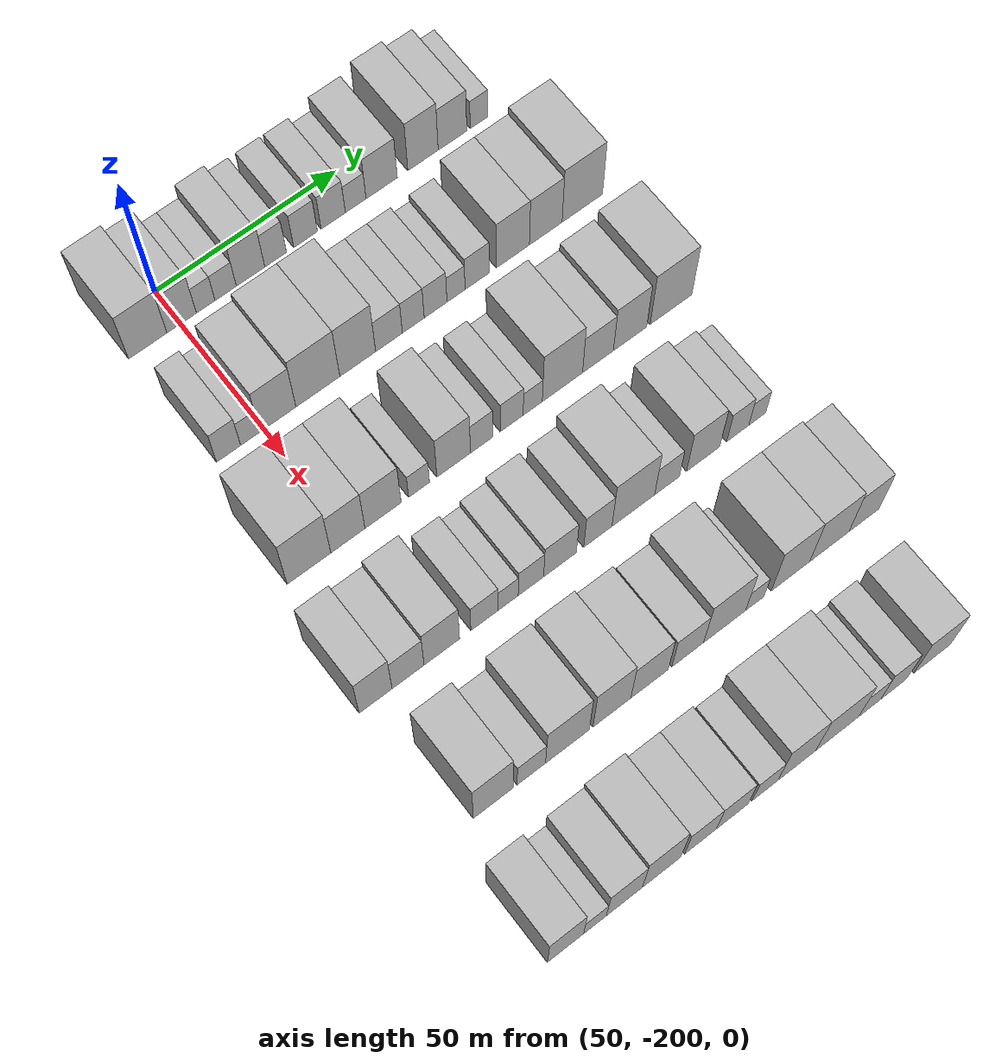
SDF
<sdf version="1.6">
 <world name="default">
  <model name="building_40">
   <static>1</static>
   <pose>50.0000 -208.8138 0 0.000000 0.000000 0.000000</pose>
   <link name="link">
    <pose>0 0 10.50 0 0 0</pose>
    <collision name="collision"><geometry><box><size>20.0000 10.3014 21.0000</size></box></geometry></collision>
    <visual name="visual">
     <cast_shadows>0</cast_shadows>
     <geometry><box><size>20.0000 10.3014 21.0000</size></box></geometry>
     <material>
      <script>
       <uri>model://HANNAS_wall/materials/scripts</uri>
       <uri>model://HANNAS_wall/materials/textures</uri>
       <name>vrc/HANNAS_wall</name>
      </script>
     </material>
    </visual>
   </link>
  </model>
  <model name="building_41">
   <static>1</static>
   <pose>50.0000 -199.6917 0 0.000000 0.000000 0.000000</pose>
   <link name="link">
    <pose>0 0 9.00 0 0 0</pose>
    <collision name="collision"><geometry><box><size>20.0000 7.9428 18.0000</size></box></geometry></collision>
    <visual name="visual">
     <cast_shadows>0</cast_shadows>
     <geometry><box><size>20.0000 7.9428 18.0000</size></box></geometry>
     <material>
      <script>
       <uri>model://HANNAS_wall/materials/scripts</uri>
       <uri>model://HANNAS_wall/materials/textures</uri>
       <name>vrc/HANNAS_wall</name>
      </script>
     </material>
    </visual>
   </link>
  </model>
  <model name="building_42">
   <static>1</static>
   <pose>50.0000 -193.1859 0 0.000000 0.000000 0.000000</pose>
   <link name="link">
    <pose>0 0 6.00 0 0 0</pose>
    <collision name="collision"><geometry><box><size>20.0000 5.0686 12.0000</size></box></geometry></collision>
    <visual name="visual">
     <cast_shadows>0</cast_shadows>
     <geometry><box><size>20.0000 5.0686 12.0000</size></box></geometry>
     <material>
      <script>
       <uri>model://HANNAS_wall/materials/scripts</uri>
       <uri>model://HANNAS_wall/materials/textures</uri>
       <name>vrc/HANNAS_wall</name>
      </script>
     </material>
    </visual>
   </link>
  </model>
  <model name="building_43">
   <static>1</static>
   <pose>50.0000 -187.7437 0 0.000000 0.000000 0.000000</pose>
   <link name="link">
    <pose>0 0 6.00 0 0 0</pose>
    <collision name="collision"><geometry><box><size>20.0000 5.8158 12.0000</size></box></geometry></collision>
    <visual name="visual">
     <cast_shadows>0</cast_shadows>
     <geometry><box><size>20.0000 5.8158 12.0000</size></box></geometry>
     <material>
      <script>
       <uri>model://HANNAS_wall/materials/scripts</uri>
       <uri>model://HANNAS_wall/materials/textures</uri>
       <name>vrc/HANNAS_wall</name>
      </script>
     </material>
    </visual>
   </link>
  </model>
  <model name="building_44">
   <static>1</static>
   <pose>50.0000 -180.9236 0 0.000000 0.000000 0.000000</pose>
   <link name="link">
    <pose>0 0 9.00 0 0 0</pose>
    <collision name="collision"><geometry><box><size>20.0000 7.8245 18.0000</size></box></geometry></collision>
    <visual name="visual">
     <cast_shadows>0</cast_shadows>
     <geometry><box><size>20.0000 7.8245 18.0000</size></box></geometry>
     <material>
      <script>
       <uri>model://HANNAS_wall/materials/scripts</uri>
       <uri>model://HANNAS_wall/materials/textures</uri>
       <name>vrc/HANNAS_wall</name>
      </script>
     </material>
    </visual>
   </link>
  </model>
  <model name="building_45">
   <static>1</static>
   <pose>50.0000 -174.0095 0 0.000000 0.000000 0.000000</pose>
   <link name="link">
    <pose>0 0 7.50 0 0 0</pose>
    <collision name="collision"><geometry><box><size>20.0000 6.0038 15.0000</size></box></geometry></collision>
    <visual name="visual">
     <cast_shadows>0</cast_shadows>
     <geometry><box><size>20.0000 6.0038 15.0000</size></box></geometry>
     <material>
      <script>
       <uri>model://HANNAS_wall/materials/scripts</uri>
       <uri>model://HANNAS_wall/materials/textures</uri>
       <name>vrc/HANNAS_wall</name>
      </script>
     </material>
    </visual>
   </link>
  </model>
  <model name="building_46">
   <static>1</static>
   <pose>50.0000 -165.6978 0 0.000000 0.000000 0.000000</pose>
   <link name="link">
    <pose>0 0 7.50 0 0 0</pose>
    <collision name="collision"><geometry><box><size>20.0000 6.6195 15.0000</size></box></geometry></collision>
    <visual name="visual">
     <cast_shadows>0</cast_shadows>
     <geometry><box><size>20.0000 6.6195 15.0000</size></box></geometry>
     <material>
      <script>
       <uri>model://HANNAS_wall/materials/scripts</uri>
       <uri>model://HANNAS_wall/materials/textures</uri>
       <name>vrc/HANNAS_wall</name>
      </script>
     </material>
    </visual>
   </link>
  </model>
  <model name="building_47">
   <static>1</static>
   <pose>50.0000 -157.9774 0 0.000000 0.000000 0.000000</pose>
   <link name="link">
    <pose>0 0 7.50 0 0 0</pose>
    <collision name="collision"><geometry><box><size>20.0000 6.8214 15.0000</size></box></geometry></collision>
    <visual name="visual">
     <cast_shadows>0</cast_shadows>
     <geometry><box><size>20.0000 6.8214 15.0000</size></box></geometry>
     <material>
      <script>
       <uri>model://HANNAS_wall/materials/scripts</uri>
       <uri>model://HANNAS_wall/materials/textures</uri>
       <name>vrc/HANNAS_wall</name>
      </script>
     </material>
    </visual>
   </link>
  </model>
  <model name="building_48">
   <static>1</static>
   <pose>50.0000 -151.6490 0 0.000000 0.000000 0.000000</pose>
   <link name="link">
    <pose>0 0 6.00 0 0 0</pose>
    <collision name="collision"><geometry><box><size>20.0000 5.8354 12.0000</size></box></geometry></collision>
    <visual name="visual">
     <cast_shadows>0</cast_shadows>
     <geometry><box><size>20.0000 5.8354 12.0000</size></box></geometry>
     <material>
      <script>
       <uri>model://HANNAS_wall/materials/scripts</uri>
       <uri>model://HANNAS_wall/materials/textures</uri>
       <name>vrc/HANNAS_wall</name>
      </script>
     </material>
    </visual>
   </link>
  </model>
  <model name="building_49">
   <static>1</static>
   <pose>50.0000 -144.2989 0 0.000000 0.000000 0.000000</pose>
   <link name="link">
    <pose>0 0 9.00 0 0 0</pose>
    <collision name="collision"><geometry><box><size>20.0000 8.8647 18.0000</size></box></geometry></collision>
    <visual name="visual">
     <cast_shadows>0</cast_shadows>
     <geometry><box><size>20.0000 8.8647 18.0000</size></box></geometry>
     <material>
      <script>
       <uri>model://HANNAS_wall/materials/scripts</uri>
       <uri>model://HANNAS_wall/materials/textures</uri>
       <name>vrc/HANNAS_wall</name>
      </script>
     </material>
    </visual>
   </link>
  </model>
  <model name="building_50">
   <static>1</static>
   <pose>50.0000 -132.5023 0 0.000000 0.000000 0.000000</pose>
   <link name="link">
    <pose>0 0 10.50 0 0 0</pose>
    <collision name="collision"><geometry><box><size>20.0000 8.7286 21.0000</size></box></geometry></collision>
    <visual name="visual">
     <cast_shadows>0</cast_shadows>
     <geometry><box><size>20.0000 8.7286 21.0000</size></box></geometry>
     <material>
      <script>
       <uri>model://HANNAS_wall/materials/scripts</uri>
       <uri>model://HANNAS_wall/materials/textures</uri>
       <name>vrc/HANNAS_wall</name>
      </script>
     </material>
    </visual>
   </link>
  </model>
  <model name="building_51">
   <static>1</static>
   <pose>50.0000 -124.0037 0 0.000000 0.000000 0.000000</pose>
   <link name="link">
    <pose>0 0 9.00 0 0 0</pose>
    <collision name="collision"><geometry><box><size>20.0000 8.2687 18.0000</size></box></geometry></collision>
    <visual name="visual">
     <cast_shadows>0</cast_shadows>
     <geometry><box><size>20.0000 8.2687 18.0000</size></box></geometry>
     <material>
      <script>
       <uri>model://HANNAS_wall/materials/scripts</uri>
       <uri>model://HANNAS_wall/materials/textures</uri>
       <name>vrc/HANNAS_wall</name>
      </script>
     </material>
    </visual>
   </link>
  </model>
  <model name="building_52">
   <static>1</static>
   <pose>50.0000 -116.3145 0 0.000000 0.000000 0.000000</pose>
   <link name="link">
    <pose>0 0 6.00 0 0 0</pose>
    <collision name="collision"><geometry><box><size>20.0000 5.1096 12.0000</size></box></geometry></collision>
    <visual name="visual">
     <cast_shadows>0</cast_shadows>
     <geometry><box><size>20.0000 5.1096 12.0000</size></box></geometry>
     <material>
      <script>
       <uri>model://HANNAS_wall/materials/scripts</uri>
       <uri>model://HANNAS_wall/materials/textures</uri>
       <name>vrc/HANNAS_wall</name>
      </script>
     </material>
    </visual>
   </link>
  </model>
  <model name="building_169">
   <static>1</static>
   <pose>82.0000 -209.3966 0 0.000000 0.000000 0.000000</pose>
   <link name="link">
    <pose>0 0 7.50 0 0 0</pose>
    <collision name="collision"><geometry><box><size>20.0000 6.4064 15.0000</size></box></geometry></collision>
    <visual name="visual">
     <cast_shadows>0</cast_shadows>
     <geometry><box><size>20.0000 6.4064 15.0000</size></box></geometry>
     <material>
      <script>
       <uri>model://HANNAS_wall/materials/scripts</uri>
       <uri>model://HANNAS_wall/materials/textures</uri>
       <name>vrc/HANNAS_wall</name>
      </script>
     </material>
    </visual>
   </link>
  </model>
  <model name="building_170">
   <static>1</static>
   <pose>82.0000 -203.6268 0 0.000000 0.000000 0.000000</pose>
   <link name="link">
    <pose>0 0 6.00 0 0 0</pose>
    <collision name="collision"><geometry><box><size>20.0000 5.1331 12.0000</size></box></geometry></collision>
    <visual name="visual">
     <cast_shadows>0</cast_shadows>
     <geometry><box><size>20.0000 5.1331 12.0000</size></box></geometry>
     <material>
      <script>
       <uri>model://HANNAS_wall/materials/scripts</uri>
       <uri>model://HANNAS_wall/materials/textures</uri>
       <name>vrc/HANNAS_wall</name>
      </script>
     </material>
    </visual>
   </link>
  </model>
  <model name="building_171">
   <static>1</static>
   <pose>82.0000 -196.2169 0 0.000000 0.000000 0.000000</pose>
   <link name="link">
    <pose>0 0 10.50 0 0 0</pose>
    <collision name="collision"><geometry><box><size>20.0000 9.6867 21.0000</size></box></geometry></collision>
    <visual name="visual">
     <cast_shadows>0</cast_shadows>
     <geometry><box><size>20.0000 9.6867 21.0000</size></box></geometry>
     <material>
      <script>
       <uri>model://HANNAS_wall/materials/scripts</uri>
       <uri>model://HANNAS_wall/materials/textures</uri>
       <name>vrc/HANNAS_wall</name>
      </script>
     </material>
    </visual>
   </link>
  </model>
  <model name="building_172">
   <static>1</static>
   <pose>82.0000 -185.4184 0 0.000000 0.000000 0.000000</pose>
   <link name="link">
    <pose>0 0 12.00 0 0 0</pose>
    <collision name="collision"><geometry><box><size>20.0000 11.9102 24.0000</size></box></geometry></collision>
    <visual name="visual">
     <cast_shadows>0</cast_shadows>
     <geometry><box><size>20.0000 11.9102 24.0000</size></box></geometry>
     <material>
      <script>
       <uri>model://HANNAS_wall/materials/scripts</uri>
       <uri>model://HANNAS_wall/materials/textures</uri>
       <name>vrc/HANNAS_wall</name>
      </script>
     </material>
    </visual>
   </link>
  </model>
  <model name="building_173">
   <static>1</static>
   <pose>82.0000 -174.5553 0 0.000000 0.000000 0.000000</pose>
   <link name="link">
    <pose>0 0 12.00 0 0 0</pose>
    <collision name="collision"><geometry><box><size>20.0000 9.8162 24.0000</size></box></geometry></collision>
    <visual name="visual">
     <cast_shadows>0</cast_shadows>
     <geometry><box><size>20.0000 9.8162 24.0000</size></box></geometry>
     <material>
      <script>
       <uri>model://HANNAS_wall/materials/scripts</uri>
       <uri>model://HANNAS_wall/materials/textures</uri>
       <name>vrc/HANNAS_wall</name>
      </script>
     </material>
    </visual>
   </link>
  </model>
  <model name="building_174">
   <static>1</static>
   <pose>82.0000 -165.9482 0 0.000000 0.000000 0.000000</pose>
   <link name="link">
    <pose>0 0 7.50 0 0 0</pose>
    <collision name="collision"><geometry><box><size>20.0000 7.3980 15.0000</size></box></geometry></collision>
    <visual name="visual">
     <cast_shadows>0</cast_shadows>
     <geometry><box><size>20.0000 7.3980 15.0000</size></box></geometry>
     <material>
      <script>
       <uri>model://HANNAS_wall/materials/scripts</uri>
       <uri>model://HANNAS_wall/materials/textures</uri>
       <name>vrc/HANNAS_wall</name>
      </script>
     </material>
    </visual>
   </link>
  </model>
  <model name="building_175">
   <static>1</static>
   <pose>82.0000 -159.2240 0 0.000000 0.000000 0.000000</pose>
   <link name="link">
    <pose>0 0 7.50 0 0 0</pose>
    <collision name="collision"><geometry><box><size>20.0000 6.0505 15.0000</size></box></geometry></collision>
    <visual name="visual">
     <cast_shadows>0</cast_shadows>
     <geometry><box><size>20.0000 6.0505 15.0000</size></box></geometry>
     <material>
      <script>
       <uri>model://HANNAS_wall/materials/scripts</uri>
       <uri>model://HANNAS_wall/materials/textures</uri>
       <name>vrc/HANNAS_wall</name>
      </script>
     </material>
    </visual>
   </link>
  </model>
  <model name="building_176">
   <static>1</static>
   <pose>82.0000 -153.0103 0 0.000000 0.000000 0.000000</pose>
   <link name="link">
    <pose>0 0 7.50 0 0 0</pose>
    <collision name="collision"><geometry><box><size>20.0000 6.3769 15.0000</size></box></geometry></collision>
    <visual name="visual">
     <cast_shadows>0</cast_shadows>
     <geometry><box><size>20.0000 6.3769 15.0000</size></box></geometry>
     <material>
      <script>
       <uri>model://HANNAS_wall/materials/scripts</uri>
       <uri>model://HANNAS_wall/materials/textures</uri>
       <name>vrc/HANNAS_wall</name>
      </script>
     </material>
    </visual>
   </link>
  </model>
  <model name="building_177">
   <static>1</static>
   <pose>82.0000 -147.2824 0 0.000000 0.000000 0.000000</pose>
   <link name="link">
    <pose>0 0 6.00 0 0 0</pose>
    <collision name="collision"><geometry><box><size>20.0000 5.0791 12.0000</size></box></geometry></collision>
    <visual name="visual">
     <cast_shadows>0</cast_shadows>
     <geometry><box><size>20.0000 5.0791 12.0000</size></box></geometry>
     <material>
      <script>
       <uri>model://HANNAS_wall/materials/scripts</uri>
       <uri>model://HANNAS_wall/materials/textures</uri>
       <name>vrc/HANNAS_wall</name>
      </script>
     </material>
    </visual>
   </link>
  </model>
  <model name="building_178">
   <static>1</static>
   <pose>82.0000 -141.3290 0 0.000000 0.000000 0.000000</pose>
   <link name="link">
    <pose>0 0 7.50 0 0 0</pose>
    <collision name="collision"><geometry><box><size>20.0000 6.8276 15.0000</size></box></geometry></collision>
    <visual name="visual">
     <cast_shadows>0</cast_shadows>
     <geometry><box><size>20.0000 6.8276 15.0000</size></box></geometry>
     <material>
      <script>
       <uri>model://HANNAS_wall/materials/scripts</uri>
       <uri>model://HANNAS_wall/materials/textures</uri>
       <name>vrc/HANNAS_wall</name>
      </script>
     </material>
    </visual>
   </link>
  </model>
  <model name="building_179">
   <static>1</static>
   <pose>82.0000 -131.1991 0 0.000000 0.000000 0.000000</pose>
   <link name="link">
    <pose>0 0 10.50 0 0 0</pose>
    <collision name="collision"><geometry><box><size>20.0000 9.4322 21.0000</size></box></geometry></collision>
    <visual name="visual">
     <cast_shadows>0</cast_shadows>
     <geometry><box><size>20.0000 9.4322 21.0000</size></box></geometry>
     <material>
      <script>
       <uri>model://HANNAS_wall/materials/scripts</uri>
       <uri>model://HANNAS_wall/materials/textures</uri>
       <name>vrc/HANNAS_wall</name>
      </script>
     </material>
    </visual>
   </link>
  </model>
  <model name="building_180">
   <static>1</static>
   <pose>82.0000 -121.7818 0 0.000000 0.000000 0.000000</pose>
   <link name="link">
    <pose>0 0 10.50 0 0 0</pose>
    <collision name="collision"><geometry><box><size>20.0000 9.4025 21.0000</size></box></geometry></collision>
    <visual name="visual">
     <cast_shadows>0</cast_shadows>
     <geometry><box><size>20.0000 9.4025 21.0000</size></box></geometry>
     <material>
      <script>
       <uri>model://HANNAS_wall/materials/scripts</uri>
       <uri>model://HANNAS_wall/materials/textures</uri>
       <name>vrc/HANNAS_wall</name>
      </script>
     </material>
    </visual>
   </link>
  </model>
  <model name="building_181">
   <static>1</static>
   <pose>82.0000 -111.2250 0 0.000000 0.000000 0.000000</pose>
   <link name="link">
    <pose>0 0 12.00 0 0 0</pose>
    <collision name="collision"><geometry><box><size>20.0000 11.7112 24.0000</size></box></geometry></collision>
    <visual name="visual">
     <cast_shadows>0</cast_shadows>
     <geometry><box><size>20.0000 11.7112 24.0000</size></box></geometry>
     <material>
      <script>
       <uri>model://HANNAS_wall/materials/scripts</uri>
       <uri>model://HANNAS_wall/materials/textures</uri>
       <name>vrc/HANNAS_wall</name>
      </script>
     </material>
    </visual>
   </link>
  </model>
  <model name="building_297">
   <static>1</static>
   <pose>114.0000 -210.9122 0 0.000000 0.000000 0.000000</pose>
   <link name="link">
    <pose>0 0 12.00 0 0 0</pose>
    <collision name="collision"><geometry><box><size>20.0000 11.4995 24.0000</size></box></geometry></collision>
    <visual name="visual">
     <cast_shadows>0</cast_shadows>
     <geometry><box><size>20.0000 11.4995 24.0000</size></box></geometry>
     <material>
      <script>
       <uri>model://HANNAS_wall/materials/scripts</uri>
       <uri>model://HANNAS_wall/materials/textures</uri>
       <name>vrc/HANNAS_wall</name>
      </script>
     </material>
    </visual>
   </link>
  </model>
  <model name="building_298">
   <static>1</static>
   <pose>114.0000 -200.6374 0 0.000000 0.000000 0.000000</pose>
   <link name="link">
    <pose>0 0 10.50 0 0 0</pose>
    <collision name="collision"><geometry><box><size>20.0000 9.0501 21.0000</size></box></geometry></collision>
    <visual name="visual">
     <cast_shadows>0</cast_shadows>
     <geometry><box><size>20.0000 9.0501 21.0000</size></box></geometry>
     <material>
      <script>
       <uri>model://HANNAS_wall/materials/scripts</uri>
       <uri>model://HANNAS_wall/materials/textures</uri>
       <name>vrc/HANNAS_wall</name>
      </script>
     </material>
    </visual>
   </link>
  </model>
  <model name="building_299">
   <static>1</static>
   <pose>114.0000 -191.2783 0 0.000000 0.000000 0.000000</pose>
   <link name="link">
    <pose>0 0 10.50 0 0 0</pose>
    <collision name="collision"><geometry><box><size>20.0000 9.6682 21.0000</size></box></geometry></collision>
    <visual name="visual">
     <cast_shadows>0</cast_shadows>
     <geometry><box><size>20.0000 9.6682 21.0000</size></box></geometry>
     <material>
      <script>
       <uri>model://HANNAS_wall/materials/scripts</uri>
       <uri>model://HANNAS_wall/materials/textures</uri>
       <name>vrc/HANNAS_wall</name>
      </script>
     </material>
    </visual>
   </link>
  </model>
  <model name="building_300">
   <static>1</static>
   <pose>114.0000 -181.6312 0 0.000000 0.000000 0.000000</pose>
   <link name="link">
    <pose>0 0 6.00 0 0 0</pose>
    <collision name="collision"><geometry><box><size>20.0000 5.6261 12.0000</size></box></geometry></collision>
    <visual name="visual">
     <cast_shadows>0</cast_shadows>
     <geometry><box><size>20.0000 5.6261 12.0000</size></box></geometry>
     <material>
      <script>
       <uri>model://HANNAS_wall/materials/scripts</uri>
       <uri>model://HANNAS_wall/materials/textures</uri>
       <name>vrc/HANNAS_wall</name>
      </script>
     </material>
    </visual>
   </link>
  </model>
  <model name="building_301">
   <static>1</static>
   <pose>114.0000 -172.2374 0 0.000000 0.000000 0.000000</pose>
   <link name="link">
    <pose>0 0 10.50 0 0 0</pose>
    <collision name="collision"><geometry><box><size>20.0000 9.1615 21.0000</size></box></geometry></collision>
    <visual name="visual">
     <cast_shadows>0</cast_shadows>
     <geometry><box><size>20.0000 9.1615 21.0000</size></box></geometry>
     <material>
      <script>
       <uri>model://HANNAS_wall/materials/scripts</uri>
       <uri>model://HANNAS_wall/materials/textures</uri>
       <name>vrc/HANNAS_wall</name>
      </script>
     </material>
    </visual>
   </link>
  </model>
  <model name="building_302">
   <static>1</static>
   <pose>114.0000 -164.5729 0 0.000000 0.000000 0.000000</pose>
   <link name="link">
    <pose>0 0 7.50 0 0 0</pose>
    <collision name="collision"><geometry><box><size>20.0000 6.1673 15.0000</size></box></geometry></collision>
    <visual name="visual">
     <cast_shadows>0</cast_shadows>
     <geometry><box><size>20.0000 6.1673 15.0000</size></box></geometry>
     <material>
      <script>
       <uri>model://HANNAS_wall/materials/scripts</uri>
       <uri>model://HANNAS_wall/materials/textures</uri>
       <name>vrc/HANNAS_wall</name>
      </script>
     </material>
    </visual>
   </link>
  </model>
  <model name="building_303">
   <static>1</static>
   <pose>114.0000 -156.3201 0 0.000000 0.000000 0.000000</pose>
   <link name="link">
    <pose>0 0 7.50 0 0 0</pose>
    <collision name="collision"><geometry><box><size>20.0000 6.3383 15.0000</size></box></geometry></collision>
    <visual name="visual">
     <cast_shadows>0</cast_shadows>
     <geometry><box><size>20.0000 6.3383 15.0000</size></box></geometry>
     <material>
      <script>
       <uri>model://HANNAS_wall/materials/scripts</uri>
       <uri>model://HANNAS_wall/materials/textures</uri>
       <name>vrc/HANNAS_wall</name>
      </script>
     </material>
    </visual>
   </link>
  </model>
  <model name="building_304">
   <static>1</static>
   <pose>114.0000 -150.4932 0 0.000000 0.000000 0.000000</pose>
   <link name="link">
    <pose>0 0 6.00 0 0 0</pose>
    <collision name="collision"><geometry><box><size>20.0000 5.3154 12.0000</size></box></geometry></collision>
    <visual name="visual">
     <cast_shadows>0</cast_shadows>
     <geometry><box><size>20.0000 5.3154 12.0000</size></box></geometry>
     <material>
      <script>
       <uri>model://HANNAS_wall/materials/scripts</uri>
       <uri>model://HANNAS_wall/materials/textures</uri>
       <name>vrc/HANNAS_wall</name>
      </script>
     </material>
    </visual>
   </link>
  </model>
  <model name="building_305">
   <static>1</static>
   <pose>114.0000 -142.1930 0 0.000000 0.000000 0.000000</pose>
   <link name="link">
    <pose>0 0 12.00 0 0 0</pose>
    <collision name="collision"><geometry><box><size>20.0000 11.2850 24.0000</size></box></geometry></collision>
    <visual name="visual">
     <cast_shadows>0</cast_shadows>
     <geometry><box><size>20.0000 11.2850 24.0000</size></box></geometry>
     <material>
      <script>
       <uri>model://HANNAS_wall/materials/scripts</uri>
       <uri>model://HANNAS_wall/materials/textures</uri>
       <name>vrc/HANNAS_wall</name>
      </script>
     </material>
    </visual>
   </link>
  </model>
  <model name="building_306">
   <static>1</static>
   <pose>114.0000 -132.1898 0 0.000000 0.000000 0.000000</pose>
   <link name="link">
    <pose>0 0 9.00 0 0 0</pose>
    <collision name="collision"><geometry><box><size>20.0000 8.7216 18.0000</size></box></geometry></collision>
    <visual name="visual">
     <cast_shadows>0</cast_shadows>
     <geometry><box><size>20.0000 8.7216 18.0000</size></box></geometry>
     <material>
      <script>
       <uri>model://HANNAS_wall/materials/scripts</uri>
       <uri>model://HANNAS_wall/materials/textures</uri>
       <name>vrc/HANNAS_wall</name>
      </script>
     </material>
    </visual>
   </link>
  </model>
  <model name="building_307">
   <static>1</static>
   <pose>114.0000 -123.0762 0 0.000000 0.000000 0.000000</pose>
   <link name="link">
    <pose>0 0 10.50 0 0 0</pose>
    <collision name="collision"><geometry><box><size>20.0000 9.5055 21.0000</size></box></geometry></collision>
    <visual name="visual">
     <cast_shadows>0</cast_shadows>
     <geometry><box><size>20.0000 9.5055 21.0000</size></box></geometry>
     <material>
      <script>
       <uri>model://HANNAS_wall/materials/scripts</uri>
       <uri>model://HANNAS_wall/materials/textures</uri>
       <name>vrc/HANNAS_wall</name>
      </script>
     </material>
    </visual>
   </link>
  </model>
  <model name="building_308">
   <static>1</static>
   <pose>114.0000 -111.3295 0 0.000000 0.000000 0.000000</pose>
   <link name="link">
    <pose>0 0 12.00 0 0 0</pose>
    <collision name="collision"><geometry><box><size>20.0000 11.9880 24.0000</size></box></geometry></collision>
    <visual name="visual">
     <cast_shadows>0</cast_shadows>
     <geometry><box><size>20.0000 11.9880 24.0000</size></box></geometry>
     <material>
      <script>
       <uri>model://HANNAS_wall/materials/scripts</uri>
       <uri>model://HANNAS_wall/materials/textures</uri>
       <name>vrc/HANNAS_wall</name>
      </script>
     </material>
    </visual>
   </link>
  </model>
  <model name="building_417">
   <static>1</static>
   <pose>146.0000 -216.9086 0 0.000000 0.000000 0.000000</pose>
   <link name="link">
    <pose>0 0 10.50 0 0 0</pose>
    <collision name="collision"><geometry><box><size>20.0000 8.5327 21.0000</size></box></geometry></collision>
    <visual name="visual">
     <cast_shadows>0</cast_shadows>
     <geometry><box><size>20.0000 8.5327 21.0000</size></box></geometry>
     <material>
      <script>
       <uri>model://HANNAS_wall/materials/scripts</uri>
       <uri>model://HANNAS_wall/materials/textures</uri>
       <name>vrc/HANNAS_wall</name>
      </script>
     </material>
    </visual>
   </link>
  </model>
  <model name="building_418">
   <static>1</static>
   <pose>146.0000 -208.4651 0 0.000000 0.000000 0.000000</pose>
   <link name="link">
    <pose>0 0 9.00 0 0 0</pose>
    <collision name="collision"><geometry><box><size>20.0000 8.3543 18.0000</size></box></geometry></collision>
    <visual name="visual">
     <cast_shadows>0</cast_shadows>
     <geometry><box><size>20.0000 8.3543 18.0000</size></box></geometry>
     <material>
      <script>
       <uri>model://HANNAS_wall/materials/scripts</uri>
       <uri>model://HANNAS_wall/materials/textures</uri>
       <name>vrc/HANNAS_wall</name>
      </script>
     </material>
    </visual>
   </link>
  </model>
  <model name="building_419">
   <static>1</static>
   <pose>146.0000 -199.6289 0 0.000000 0.000000 0.000000</pose>
   <link name="link">
    <pose>0 0 10.50 0 0 0</pose>
    <collision name="collision"><geometry><box><size>20.0000 9.3181 21.0000</size></box></geometry></collision>
    <visual name="visual">
     <cast_shadows>0</cast_shadows>
     <geometry><box><size>20.0000 9.3181 21.0000</size></box></geometry>
     <material>
      <script>
       <uri>model://HANNAS_wall/materials/scripts</uri>
       <uri>model://HANNAS_wall/materials/textures</uri>
       <name>vrc/HANNAS_wall</name>
      </script>
     </material>
    </visual>
   </link>
  </model>
  <model name="building_420">
   <static>1</static>
   <pose>146.0000 -188.3543 0 0.000000 0.000000 0.000000</pose>
   <link name="link">
    <pose>0 0 7.50 0 0 0</pose>
    <collision name="collision"><geometry><box><size>20.0000 7.2312 15.0000</size></box></geometry></collision>
    <visual name="visual">
     <cast_shadows>0</cast_shadows>
     <geometry><box><size>20.0000 7.2312 15.0000</size></box></geometry>
     <material>
      <script>
       <uri>model://HANNAS_wall/materials/scripts</uri>
       <uri>model://HANNAS_wall/materials/textures</uri>
       <name>vrc/HANNAS_wall</name>
      </script>
     </material>
    </visual>
   </link>
  </model>
  <model name="building_421">
   <static>1</static>
   <pose>146.0000 -182.0486 0 0.000000 0.000000 0.000000</pose>
   <link name="link">
    <pose>0 0 6.00 0 0 0</pose>
    <collision name="collision"><geometry><box><size>20.0000 5.3800 12.0000</size></box></geometry></collision>
    <visual name="visual">
     <cast_shadows>0</cast_shadows>
     <geometry><box><size>20.0000 5.3800 12.0000</size></box></geometry>
     <material>
      <script>
       <uri>model://HANNAS_wall/materials/scripts</uri>
       <uri>model://HANNAS_wall/materials/textures</uri>
       <name>vrc/HANNAS_wall</name>
      </script>
     </material>
    </visual>
   </link>
  </model>
  <model name="building_422">
   <static>1</static>
   <pose>146.0000 -175.9361 0 0.000000 0.000000 0.000000</pose>
   <link name="link">
    <pose>0 0 7.50 0 0 0</pose>
    <collision name="collision"><geometry><box><size>20.0000 6.8451 15.0000</size></box></geometry></collision>
    <visual name="visual">
     <cast_shadows>0</cast_shadows>
     <geometry><box><size>20.0000 6.8451 15.0000</size></box></geometry>
     <material>
      <script>
       <uri>model://HANNAS_wall/materials/scripts</uri>
       <uri>model://HANNAS_wall/materials/textures</uri>
       <name>vrc/HANNAS_wall</name>
      </script>
     </material>
    </visual>
   </link>
  </model>
  <model name="building_423">
   <static>1</static>
   <pose>146.0000 -168.0708 0 0.000000 0.000000 0.000000</pose>
   <link name="link">
    <pose>0 0 9.00 0 0 0</pose>
    <collision name="collision"><geometry><box><size>20.0000 8.8856 18.0000</size></box></geometry></collision>
    <visual name="visual">
     <cast_shadows>0</cast_shadows>
     <geometry><box><size>20.0000 8.8856 18.0000</size></box></geometry>
     <material>
      <script>
       <uri>model://HANNAS_wall/materials/scripts</uri>
       <uri>model://HANNAS_wall/materials/textures</uri>
       <name>vrc/HANNAS_wall</name>
      </script>
     </material>
    </visual>
   </link>
  </model>
  <model name="building_424">
   <static>1</static>
   <pose>146.0000 -157.7720 0 0.000000 0.000000 0.000000</pose>
   <link name="link">
    <pose>0 0 9.00 0 0 0</pose>
    <collision name="collision"><geometry><box><size>20.0000 7.7119 18.0000</size></box></geometry></collision>
    <visual name="visual">
     <cast_shadows>0</cast_shadows>
     <geometry><box><size>20.0000 7.7119 18.0000</size></box></geometry>
     <material>
      <script>
       <uri>model://HANNAS_wall/materials/scripts</uri>
       <uri>model://HANNAS_wall/materials/textures</uri>
       <name>vrc/HANNAS_wall</name>
      </script>
     </material>
    </visual>
   </link>
  </model>
  <model name="building_425">
   <static>1</static>
   <pose>146.0000 -148.0028 0 0.000000 0.000000 0.000000</pose>
   <link name="link">
    <pose>0 0 12.00 0 0 0</pose>
    <collision name="collision"><geometry><box><size>20.0000 11.8264 24.0000</size></box></geometry></collision>
    <visual name="visual">
     <cast_shadows>0</cast_shadows>
     <geometry><box><size>20.0000 11.8264 24.0000</size></box></geometry>
     <material>
      <script>
       <uri>model://HANNAS_wall/materials/scripts</uri>
       <uri>model://HANNAS_wall/materials/textures</uri>
       <name>vrc/HANNAS_wall</name>
      </script>
     </material>
    </visual>
   </link>
  </model>
  <model name="building_426">
   <static>1</static>
   <pose>146.0000 -138.6194 0 0.000000 0.000000 0.000000</pose>
   <link name="link">
    <pose>0 0 7.50 0 0 0</pose>
    <collision name="collision"><geometry><box><size>20.0000 6.9405 15.0000</size></box></geometry></collision>
    <visual name="visual">
     <cast_shadows>0</cast_shadows>
     <geometry><box><size>20.0000 6.9405 15.0000</size></box></geometry>
     <material>
      <script>
       <uri>model://HANNAS_wall/materials/scripts</uri>
       <uri>model://HANNAS_wall/materials/textures</uri>
       <name>vrc/HANNAS_wall</name>
      </script>
     </material>
    </visual>
   </link>
  </model>
  <model name="building_427">
   <static>1</static>
   <pose>146.0000 -128.4983 0 0.000000 0.000000 0.000000</pose>
   <link name="link">
    <pose>0 0 10.50 0 0 0</pose>
    <collision name="collision"><geometry><box><size>20.0000 9.3016 21.0000</size></box></geometry></collision>
    <visual name="visual">
     <cast_shadows>0</cast_shadows>
     <geometry><box><size>20.0000 9.3016 21.0000</size></box></geometry>
     <material>
      <script>
       <uri>model://HANNAS_wall/materials/scripts</uri>
       <uri>model://HANNAS_wall/materials/textures</uri>
       <name>vrc/HANNAS_wall</name>
      </script>
     </material>
    </visual>
   </link>
  </model>
  <model name="building_428">
   <static>1</static>
   <pose>146.0000 -118.6992 0 0.000000 0.000000 0.000000</pose>
   <link name="link">
    <pose>0 0 7.50 0 0 0</pose>
    <collision name="collision"><geometry><box><size>20.0000 6.2966 15.0000</size></box></geometry></collision>
    <visual name="visual">
     <cast_shadows>0</cast_shadows>
     <geometry><box><size>20.0000 6.2966 15.0000</size></box></geometry>
     <material>
      <script>
       <uri>model://HANNAS_wall/materials/scripts</uri>
       <uri>model://HANNAS_wall/materials/textures</uri>
       <name>vrc/HANNAS_wall</name>
      </script>
     </material>
    </visual>
   </link>
  </model>
  <model name="building_429">
   <static>1</static>
   <pose>146.0000 -113.1475 0 0.000000 0.000000 0.000000</pose>
   <link name="link">
    <pose>0 0 6.00 0 0 0</pose>
    <collision name="collision"><geometry><box><size>20.0000 4.8068 12.0000</size></box></geometry></collision>
    <visual name="visual">
     <cast_shadows>0</cast_shadows>
     <geometry><box><size>20.0000 4.8068 12.0000</size></box></geometry>
     <material>
      <script>
       <uri>model://HANNAS_wall/materials/scripts</uri>
       <uri>model://HANNAS_wall/materials/textures</uri>
       <name>vrc/HANNAS_wall</name>
      </script>
     </material>
    </visual>
   </link>
  </model>
  <model name="building_532">
   <static>1</static>
   <pose>178.0000 -210.6344 0 0.000000 0.000000 0.000000</pose>
   <link name="link">
    <pose>0 0 12.00 0 0 0</pose>
    <collision name="collision"><geometry><box><size>20.0000 10.3002 24.0000</size></box></geometry></collision>
    <visual name="visual">
     <cast_shadows>0</cast_shadows>
     <geometry><box><size>20.0000 10.3002 24.0000</size></box></geometry>
     <material>
      <script>
       <uri>model://HANNAS_wall/materials/scripts</uri>
       <uri>model://HANNAS_wall/materials/textures</uri>
       <name>vrc/HANNAS_wall</name>
      </script>
     </material>
    </visual>
   </link>
  </model>
  <model name="building_533">
   <static>1</static>
   <pose>178.0000 -200.7801 0 0.000000 0.000000 0.000000</pose>
   <link name="link">
    <pose>0 0 7.50 0 0 0</pose>
    <collision name="collision"><geometry><box><size>20.0000 7.4085 15.0000</size></box></geometry></collision>
    <visual name="visual">
     <cast_shadows>0</cast_shadows>
     <geometry><box><size>20.0000 7.4085 15.0000</size></box></geometry>
     <material>
      <script>
       <uri>model://HANNAS_wall/materials/scripts</uri>
       <uri>model://HANNAS_wall/materials/textures</uri>
       <name>vrc/HANNAS_wall</name>
      </script>
     </material>
    </visual>
   </link>
  </model>
  <model name="building_534">
   <static>1</static>
   <pose>178.0000 -191.3310 0 0.000000 0.000000 0.000000</pose>
   <link name="link">
    <pose>0 0 12.00 0 0 0</pose>
    <collision name="collision"><geometry><box><size>20.0000 11.4896 24.0000</size></box></geometry></collision>
    <visual name="visual">
     <cast_shadows>0</cast_shadows>
     <geometry><box><size>20.0000 11.4896 24.0000</size></box></geometry>
     <material>
      <script>
       <uri>model://HANNAS_wall/materials/scripts</uri>
       <uri>model://HANNAS_wall/materials/textures</uri>
       <name>vrc/HANNAS_wall</name>
      </script>
     </material>
    </visual>
   </link>
  </model>
  <model name="building_535">
   <static>1</static>
   <pose>178.0000 -179.5438 0 0.000000 0.000000 0.000000</pose>
   <link name="link">
    <pose>0 0 12.00 0 0 0</pose>
    <collision name="collision"><geometry><box><size>20.0000 10.0848 24.0000</size></box></geometry></collision>
    <visual name="visual">
     <cast_shadows>0</cast_shadows>
     <geometry><box><size>20.0000 10.0848 24.0000</size></box></geometry>
     <material>
      <script>
       <uri>model://HANNAS_wall/materials/scripts</uri>
       <uri>model://HANNAS_wall/materials/textures</uri>
       <name>vrc/HANNAS_wall</name>
      </script>
     </material>
    </visual>
   </link>
  </model>
  <model name="building_536">
   <static>1</static>
   <pose>178.0000 -169.4841 0 0.000000 0.000000 0.000000</pose>
   <link name="link">
    <pose>0 0 10.50 0 0 0</pose>
    <collision name="collision"><geometry><box><size>20.0000 10.0345 21.0000</size></box></geometry></collision>
    <visual name="visual">
     <cast_shadows>0</cast_shadows>
     <geometry><box><size>20.0000 10.0345 21.0000</size></box></geometry>
     <material>
      <script>
       <uri>model://HANNAS_wall/materials/scripts</uri>
       <uri>model://HANNAS_wall/materials/textures</uri>
       <name>vrc/HANNAS_wall</name>
      </script>
     </material>
    </visual>
   </link>
  </model>
  <model name="building_537">
   <static>1</static>
   <pose>178.0000 -159.1468 0 0.000000 0.000000 0.000000</pose>
   <link name="link">
    <pose>0 0 9.00 0 0 0</pose>
    <collision name="collision"><geometry><box><size>20.0000 8.6402 18.0000</size></box></geometry></collision>
    <visual name="visual">
     <cast_shadows>0</cast_shadows>
     <geometry><box><size>20.0000 8.6402 18.0000</size></box></geometry>
     <material>
      <script>
       <uri>model://HANNAS_wall/materials/scripts</uri>
       <uri>model://HANNAS_wall/materials/textures</uri>
       <name>vrc/HANNAS_wall</name>
      </script>
     </material>
    </visual>
   </link>
  </model>
  <model name="building_538">
   <static>1</static>
   <pose>178.0000 -149.0733 0 0.000000 0.000000 0.000000</pose>
   <link name="link">
    <pose>0 0 12.00 0 0 0</pose>
    <collision name="collision"><geometry><box><size>20.0000 11.5068 24.0000</size></box></geometry></collision>
    <visual name="visual">
     <cast_shadows>0</cast_shadows>
     <geometry><box><size>20.0000 11.5068 24.0000</size></box></geometry>
     <material>
      <script>
       <uri>model://HANNAS_wall/materials/scripts</uri>
       <uri>model://HANNAS_wall/materials/textures</uri>
       <name>vrc/HANNAS_wall</name>
      </script>
     </material>
    </visual>
   </link>
  </model>
  <model name="building_539">
   <static>1</static>
   <pose>178.0000 -140.7698 0 0.000000 0.000000 0.000000</pose>
   <link name="link">
    <pose>0 0 6.00 0 0 0</pose>
    <collision name="collision"><geometry><box><size>20.0000 5.1001 12.0000</size></box></geometry></collision>
    <visual name="visual">
     <cast_shadows>0</cast_shadows>
     <geometry><box><size>20.0000 5.1001 12.0000</size></box></geometry>
     <material>
      <script>
       <uri>model://HANNAS_wall/materials/scripts</uri>
       <uri>model://HANNAS_wall/materials/textures</uri>
       <name>vrc/HANNAS_wall</name>
      </script>
     </material>
    </visual>
   </link>
  </model>
  <model name="building_540">
   <static>1</static>
   <pose>178.0000 -130.8442 0 0.000000 0.000000 0.000000</pose>
   <link name="link">
    <pose>0 0 12.00 0 0 0</pose>
    <collision name="collision"><geometry><box><size>20.0000 10.7513 24.0000</size></box></geometry></collision>
    <visual name="visual">
     <cast_shadows>0</cast_shadows>
     <geometry><box><size>20.0000 10.7513 24.0000</size></box></geometry>
     <material>
      <script>
       <uri>model://HANNAS_wall/materials/scripts</uri>
       <uri>model://HANNAS_wall/materials/textures</uri>
       <name>vrc/HANNAS_wall</name>
      </script>
     </material>
    </visual>
   </link>
  </model>
  <model name="building_541">
   <static>1</static>
   <pose>178.0000 -119.9368 0 0.000000 0.000000 0.000000</pose>
   <link name="link">
    <pose>0 0 12.00 0 0 0</pose>
    <collision name="collision"><geometry><box><size>20.0000 11.0636 24.0000</size></box></geometry></collision>
    <visual name="visual">
     <cast_shadows>0</cast_shadows>
     <geometry><box><size>20.0000 11.0636 24.0000</size></box></geometry>
     <material>
      <script>
       <uri>model://HANNAS_wall/materials/scripts</uri>
       <uri>model://HANNAS_wall/materials/textures</uri>
       <name>vrc/HANNAS_wall</name>
      </script>
     </material>
    </visual>
   </link>
  </model>
  <model name="building_542">
   <static>1</static>
   <pose>178.0000 -110.0904 0 0.000000 0.000000 0.000000</pose>
   <link name="link">
    <pose>0 0 10.50 0 0 0</pose>
    <collision name="collision"><geometry><box><size>20.0000 8.6291 21.0000</size></box></geometry></collision>
    <visual name="visual">
     <cast_shadows>0</cast_shadows>
     <geometry><box><size>20.0000 8.6291 21.0000</size></box></geometry>
     <material>
      <script>
       <uri>model://HANNAS_wall/materials/scripts</uri>
       <uri>model://HANNAS_wall/materials/textures</uri>
       <name>vrc/HANNAS_wall</name>
      </script>
     </material>
    </visual>
   </link>
  </model>
  <model name="building_660">
   <static>1</static>
   <pose>210.0000 -217.0556 0 0.000000 0.000000 0.000000</pose>
   <link name="link">
    <pose>0 0 10.50 0 0 0</pose>
    <collision name="collision"><geometry><box><size>20.0000 9.2028 21.0000</size></box></geometry></collision>
    <visual name="visual">
     <cast_shadows>0</cast_shadows>
     <geometry><box><size>20.0000 9.2028 21.0000</size></box></geometry>
     <material>
      <script>
       <uri>model://HANNAS_wall/materials/scripts</uri>
       <uri>model://HANNAS_wall/materials/textures</uri>
       <name>vrc/HANNAS_wall</name>
      </script>
     </material>
    </visual>
   </link>
  </model>
  <model name="building_661">
   <static>1</static>
   <pose>210.0000 -209.5477 0 0.000000 0.000000 0.000000</pose>
   <link name="link">
    <pose>0 0 6.00 0 0 0</pose>
    <collision name="collision"><geometry><box><size>20.0000 5.8129 12.0000</size></box></geometry></collision>
    <visual name="visual">
     <cast_shadows>0</cast_shadows>
     <geometry><box><size>20.0000 5.8129 12.0000</size></box></geometry>
     <material>
      <script>
       <uri>model://HANNAS_wall/materials/scripts</uri>
       <uri>model://HANNAS_wall/materials/textures</uri>
       <name>vrc/HANNAS_wall</name>
      </script>
     </material>
    </visual>
   </link>
  </model>
  <model name="building_662">
   <static>1</static>
   <pose>210.0000 -202.0047 0 0.000000 0.000000 0.000000</pose>
   <link name="link">
    <pose>0 0 10.50 0 0 0</pose>
    <collision name="collision"><geometry><box><size>20.0000 9.2732 21.0000</size></box></geometry></collision>
    <visual name="visual">
     <cast_shadows>0</cast_shadows>
     <geometry><box><size>20.0000 9.2732 21.0000</size></box></geometry>
     <material>
      <script>
       <uri>model://HANNAS_wall/materials/scripts</uri>
       <uri>model://HANNAS_wall/materials/textures</uri>
       <name>vrc/HANNAS_wall</name>
      </script>
     </material>
    </visual>
   </link>
  </model>
  <model name="building_663">
   <static>1</static>
   <pose>210.0000 -192.3294 0 0.000000 0.000000 0.000000</pose>
   <link name="link">
    <pose>0 0 12.00 0 0 0</pose>
    <collision name="collision"><geometry><box><size>20.0000 10.0774 24.0000</size></box></geometry></collision>
    <visual name="visual">
     <cast_shadows>0</cast_shadows>
     <geometry><box><size>20.0000 10.0774 24.0000</size></box></geometry>
     <material>
      <script>
       <uri>model://HANNAS_wall/materials/scripts</uri>
       <uri>model://HANNAS_wall/materials/textures</uri>
       <name>vrc/HANNAS_wall</name>
      </script>
     </material>
    </visual>
   </link>
  </model>
  <model name="building_664">
   <static>1</static>
   <pose>210.0000 -182.0985 0 0.000000 0.000000 0.000000</pose>
   <link name="link">
    <pose>0 0 9.00 0 0 0</pose>
    <collision name="collision"><geometry><box><size>20.0000 8.3844 18.0000</size></box></geometry></collision>
    <visual name="visual">
     <cast_shadows>0</cast_shadows>
     <geometry><box><size>20.0000 8.3844 18.0000</size></box></geometry>
     <material>
      <script>
       <uri>model://HANNAS_wall/materials/scripts</uri>
       <uri>model://HANNAS_wall/materials/textures</uri>
       <name>vrc/HANNAS_wall</name>
      </script>
     </material>
    </visual>
   </link>
  </model>
  <model name="building_665">
   <static>1</static>
   <pose>210.0000 -173.6885 0 0.000000 0.000000 0.000000</pose>
   <link name="link">
    <pose>0 0 9.00 0 0 0</pose>
    <collision name="collision"><geometry><box><size>20.0000 8.4355 18.0000</size></box></geometry></collision>
    <visual name="visual">
     <cast_shadows>0</cast_shadows>
     <geometry><box><size>20.0000 8.4355 18.0000</size></box></geometry>
     <material>
      <script>
       <uri>model://HANNAS_wall/materials/scripts</uri>
       <uri>model://HANNAS_wall/materials/textures</uri>
       <name>vrc/HANNAS_wall</name>
      </script>
     </material>
    </visual>
   </link>
  </model>
  <model name="building_666">
   <static>1</static>
   <pose>210.0000 -165.0080 0 0.000000 0.000000 0.000000</pose>
   <link name="link">
    <pose>0 0 7.50 0 0 0</pose>
    <collision name="collision"><geometry><box><size>20.0000 6.9255 15.0000</size></box></geometry></collision>
    <visual name="visual">
     <cast_shadows>0</cast_shadows>
     <geometry><box><size>20.0000 6.9255 15.0000</size></box></geometry>
     <material>
      <script>
       <uri>model://HANNAS_wall/materials/scripts</uri>
       <uri>model://HANNAS_wall/materials/textures</uri>
       <name>vrc/HANNAS_wall</name>
      </script>
     </material>
    </visual>
   </link>
  </model>
  <model name="building_667">
   <static>1</static>
   <pose>210.0000 -156.4317 0 0.000000 0.000000 0.000000</pose>
   <link name="link">
    <pose>0 0 12.00 0 0 0</pose>
    <collision name="collision"><geometry><box><size>20.0000 10.2271 24.0000</size></box></geometry></collision>
    <visual name="visual">
     <cast_shadows>0</cast_shadows>
     <geometry><box><size>20.0000 10.2271 24.0000</size></box></geometry>
     <material>
      <script>
       <uri>model://HANNAS_wall/materials/scripts</uri>
       <uri>model://HANNAS_wall/materials/textures</uri>
       <name>vrc/HANNAS_wall</name>
      </script>
     </material>
    </visual>
   </link>
  </model>
  <model name="building_668">
   <static>1</static>
   <pose>210.0000 -145.4275 0 0.000000 0.000000 0.000000</pose>
   <link name="link">
    <pose>0 0 12.00 0 0 0</pose>
    <collision name="collision"><geometry><box><size>20.0000 11.7812 24.0000</size></box></geometry></collision>
    <visual name="visual">
     <cast_shadows>0</cast_shadows>
     <geometry><box><size>20.0000 11.7812 24.0000</size></box></geometry>
     <material>
      <script>
       <uri>model://HANNAS_wall/materials/scripts</uri>
       <uri>model://HANNAS_wall/materials/textures</uri>
       <name>vrc/HANNAS_wall</name>
      </script>
     </material>
    </visual>
   </link>
  </model>
  <model name="building_669">
   <static>1</static>
   <pose>210.0000 -136.4985 0 0.000000 0.000000 0.000000</pose>
   <link name="link">
    <pose>0 0 7.50 0 0 0</pose>
    <collision name="collision"><geometry><box><size>20.0000 6.0768 15.0000</size></box></geometry></collision>
    <visual name="visual">
     <cast_shadows>0</cast_shadows>
     <geometry><box><size>20.0000 6.0768 15.0000</size></box></geometry>
     <material>
      <script>
       <uri>model://HANNAS_wall/materials/scripts</uri>
       <uri>model://HANNAS_wall/materials/textures</uri>
       <name>vrc/HANNAS_wall</name>
      </script>
     </material>
    </visual>
   </link>
  </model>
  <model name="building_670">
   <static>1</static>
   <pose>210.0000 -129.8270 0 0.000000 0.000000 0.000000</pose>
   <link name="link">
    <pose>0 0 9.00 0 0 0</pose>
    <collision name="collision"><geometry><box><size>20.0000 7.2663 18.0000</size></box></geometry></collision>
    <visual name="visual">
     <cast_shadows>0</cast_shadows>
     <geometry><box><size>20.0000 7.2663 18.0000</size></box></geometry>
     <material>
      <script>
       <uri>model://HANNAS_wall/materials/scripts</uri>
       <uri>model://HANNAS_wall/materials/textures</uri>
       <name>vrc/HANNAS_wall</name>
      </script>
     </material>
    </visual>
   </link>
  </model>
  <model name="building_671">
   <static>1</static>
   <pose>210.0000 -119.0978 0 0.000000 0.000000 0.000000</pose>
   <link name="link">
    <pose>0 0 10.50 0 0 0</pose>
    <collision name="collision"><geometry><box><size>20.0000 10.1921 21.0000</size></box></geometry></collision>
    <visual name="visual">
     <cast_shadows>0</cast_shadows>
     <geometry><box><size>20.0000 10.1921 21.0000</size></box></geometry>
     <material>
      <script>
       <uri>model://HANNAS_wall/materials/scripts</uri>
       <uri>model://HANNAS_wall/materials/textures</uri>
       <name>vrc/HANNAS_wall</name>
      </script>
     </material>
    </visual>
   </link>
  </model>
 </world>
</sdf>
